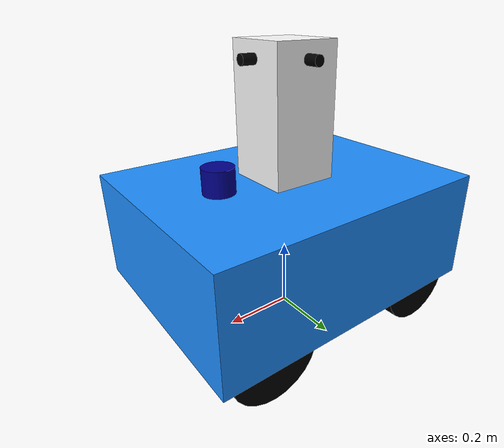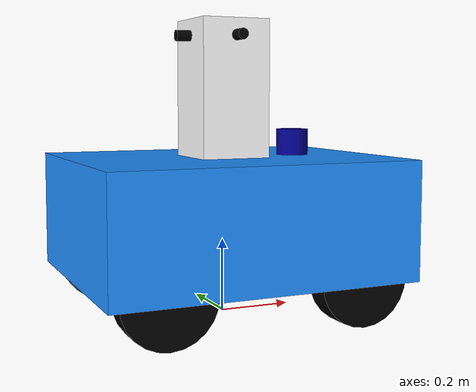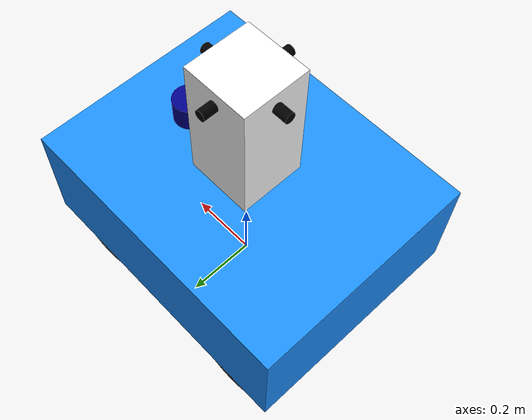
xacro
<?xml version="1.0"?>
<robot xmlns:xacro="http://www.ros.org/wiki/xacro"  name="robot">
    <xacro:arg name="use_ros2_control" default="true"/>
    <!-- Запуск управления hardware -->
    <xacro:if value="$(arg use_ros2_control)">
        <xacro:include filename="ros2_control.xacro" />
    </xacro:if>
    <xacro:include filename="inertial_macros.xacro"/>
    <xacro:include filename="robot_core.xacro"/>
    <xacro:include filename="lidar.xacro" />
    <xacro:include filename="cameras.xacro"/>
</robot>

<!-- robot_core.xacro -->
<robot xmlns:xacro="http://ros.org/wiki/xacro">
    <xacro:property name="body_length" value="0.84"/>
    <xacro:property name="body_width" value="0.66"/>
    <xacro:property name="body_height" value="0.32"/>
    <xacro:property name="body_mass" value="30"/>
    <xacro:property name="wheel_radius" value="0.125"/>
    <xacro:property name="wheel_width" value="0.07"/>
    <xacro:property name="wheel_offset_x" value="0.265"/>
    <xacro:property name="wheel_offset_y" value="0.275"/>
    <xacro:property name="wheel_offset_z" value="0.015"/>
    <xacro:property name="wheel_mass" value="2"/>
    <xacro:property name="tower_height" value="0.37"/>
    <xacro:property name="tower_width" value="0.19"/>
    <xacro:property name="tower_mass" value="1.1643"/>

    <material name="body">
        <color rgba="0.12 0.56 1 1"/>
    </material>
    <material name="wheel">
        <color rgba="0 0 0 1"/>
    </material>
    <material name="tower">
        <color rgba="1 1 1 1"/>
    </material>

    <link name="base_link"></link>

    <!-- Body -->
    <joint name="body_joint" type="fixed">
        <parent link="base_link"/>
        <child link="body"/>
        <origin xyz="0 0 ${body_height/2+wheel_radius-wheel_offset_z}"/>
    </joint>
    <link name="body">
        <visual>
            <geometry>
                <box size="${body_length} ${body_width} ${body_height}"/>
            </geometry>
            <material name="body"/>
        </visual>
        <collision>
            <geometry>
                <box size="${body_length} ${body_width} ${body_height}"/>
            </geometry>
        </collision>
        <xacro:inertial_box mass="${body_mass}" x="${body_length}" y="${body_width}" z="${body_height}">
            <origin/>
        </xacro:inertial_box>
    </link>

    <!-- Wheels -->
    <joint name="left_wheel_joint" type="continuous">
        <parent link="body"/>
        <child link="left_wheel"/>
        <origin xyz ="${wheel_offset_x} ${wheel_offset_y} -${body_height/2-wheel_offset_z}" rpy="-${pi/2} 0 0"/>
        <axis xyz="0 0 1"/>
    </joint>
    <link name="left_wheel">
        <visual>
            <geometry>
                <cylinder radius="${wheel_radius}" length="${wheel_width}"/>
            </geometry>
            <material name="wheel"/>
        </visual>
        <collision>
            <geometry>
                <cylinder radius="${wheel_radius}" length="${wheel_width}"/>
            </geometry>
        </collision>
        <xacro:inertial_cylinder mass="${wheel_mass}" radius="${wheel_radius}" length="${wheel_width}">
            <origin/>
        </xacro:inertial_cylinder>
    </link>

    <joint name="right_wheel_joint" type="continuous">
        <parent link="body"/>
        <child link="right_wheel"/>
        <origin xyz ="${wheel_offset_x} -${wheel_offset_y} -${body_height/2-wheel_offset_z}" rpy="${pi/2} 0 0"/>
        <axis xyz="0 0 -1"/>
    </joint>
    <link name="right_wheel">
        <visual>
            <geometry>
                <cylinder radius="${wheel_radius}" length="${wheel_width}"/>
            </geometry>
            <material name="wheel"/>
        </visual>
        <collision>
            <geometry>
                <cylinder radius="${wheel_radius}" length="${wheel_width}"/>
            </geometry>
        </collision>
        <xacro:inertial_cylinder mass="${wheel_mass}" radius="${wheel_radius}" length="${wheel_width}">
            <origin/>
        </xacro:inertial_cylinder>
    </link>

    <joint name="rear_left_wheel_joint" type="fixed">
        <parent link="body"/>
        <child link="rear_left_wheel"/>
        <origin xyz ="-${wheel_offset_x} ${wheel_offset_y} -${body_height/2-wheel_offset_z}" rpy="-${pi/2} 0 0"/>
        <axis xyz="0 0 1"/>
    </joint>
    <link name="rear_left_wheel">
        <visual>
            <geometry>
                <cylinder radius="${wheel_radius}" length="${wheel_width}"/>
            </geometry>
            <material name="wheel"/>
        </visual>
        <collision>
            <geometry>
                <cylinder radius="${wheel_radius}" length="${wheel_width}"/>
            </geometry>
        </collision>
        <xacro:inertial_cylinder mass="${wheel_mass}" radius="${wheel_radius}" length="${wheel_width}">
            <origin/>
        </xacro:inertial_cylinder>
    </link>

    <joint name="rear_right_wheel_joint" type="fixed">
        <parent link="body"/>
        <child link="rear_right_wheel"/>
        <origin xyz ="-${wheel_offset_x} -${wheel_offset_y} -${body_height/2-wheel_offset_z}" rpy="${pi/2} 0 0"/>
        <axis xyz="0 0 -1"/>
    </joint>
    <link name="rear_right_wheel">
        <visual>
            <geometry>
                <cylinder radius="${wheel_radius}" length="${wheel_width}"/>
            </geometry>
            <material name="wheel"/>
        </visual>
        <collision>
            <geometry>
                <cylinder radius="${wheel_radius}" length="${wheel_width}"/>
            </geometry>
        </collision>
        <xacro:inertial_cylinder mass="${wheel_mass}" radius="${wheel_radius}" length="${wheel_width}">
            <origin/>
        </xacro:inertial_cylinder>
    </link>

    <joint name="odom_joint" type="fixed">
  <parent link="odom"/>
  <child link="base_link"/>
  <origin xyz="0 0 0" rpy="0 0 0"/>
</joint>

<link name="odom"/>

    <!-- Tower -->
    <joint name="tower_joint" type="fixed">
        <parent link="body"/>
        <child link="tower"/>
        <origin xyz="0 0 ${body_height/2+tower_height/2}"/>
    </joint>
    <link name="tower">
        <visual>
            <geometry>
                <box size="${tower_width} ${tower_width} ${tower_height}"/>
            </geometry>
            <material name="tower"/>
        </visual>
        <collision>
            <geometry>
                <box size="${tower_width} ${tower_width} ${tower_height}"/>
            </geometry>
        </collision>
        <xacro:inertial_box mass="${tower_mass}" x="${tower_width}" y="${tower_width}" z="${tower_height}">
            <origin/>
        </xacro:inertial_box>
    </link>
</robot>

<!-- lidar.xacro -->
<robot xmlns:xacro="http://ros.org/wiki/xacro">
    <xacro:property name="lidar_radius" value="0.0445"/>
    <xacro:property name="lidar_height" value="0.072"/>
    <xacro:property name="lidar_offset_x" value="0.215"/>
    <xacro:property name="lidar_samples" value="1875"/>
    <xacro:property name="lidar_lasers" value="16"/>
    <xacro:property name="lidar_horizontal_min_angle" value="-${pi}"/>
    <xacro:property name="lidar_horizontal_max_angle" value="${pi}"/>
    <xacro:property name="lidar_vertical_min_angle" value="-${20*pi/180}"/>
    <xacro:property name="lidar_vertical_max_angle" value="${20*pi/180}"/>
    <xacro:property name="lidar_mass" value="0.6"/>

    <material name="lidar">
        <color rgba="0 0 0.55 1"/>
    </material>

    <joint name="lidar_joint" type="fixed">
        <parent link="body"/>
        <child link="lidar"/>
        <origin xyz="${lidar_offset_x} 0 ${body_height/2+lidar_height/2}"/>
    </joint>
    <link name="lidar">
        <visual>
            <geometry>
                <cylinder radius="${lidar_radius}" length="${lidar_height}"/>
            </geometry>
            <material name="lidar"/>
        </visual>
        <collision>
            <geometry>
                <cylinder radius="${lidar_radius}" length="${lidar_height}"/>
            </geometry>
        </collision>
        <xacro:inertial_cylinder mass="${lidar_mass}" radius="${lidar_radius}" length="${lidar_height}">
            <origin/>
        </xacro:inertial_cylinder>
    </link>
</robot>

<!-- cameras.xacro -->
<robot xmlns:xacro="http://ros.org/wiki/xacro">
    <xacro:property name="camera_radius" value="0.0145"/>
    <xacro:property name="camera_length" value="0.04"/>
    <xacro:property name="camera_offset_z" value="0.045"/>
    <xacro:property name="camera_update_rate" value="10"/>
    <xacro:property name="camera_fov" value="${49.29*pi/180}"/>
    <xacro:property name="camera_image_width" value="2448"/>
    <xacro:property name="camera_image_height" value="2048"/>
    <xacro:property name="camera_mass" value="0.2"/>

    <material name="camera">
        <color rgba="0 0 0 1"/>
    </material>

    <joint name="front_camera_joint" type="fixed">
        <parent link="tower"/>
        <child link="front_camera"/>
        <origin xyz="${tower_width/2+camera_length/2} 0 ${tower_height/2-camera_offset_z}"/>
    </joint>
    <link name="front_camera">
        <visual>
            <origin rpy="0 ${pi/2} 0"/>
            <geometry>
                <cylinder radius="${camera_radius}" length="${camera_length}"/>
            </geometry>
            <material name="camera"/>
        </visual>
        <collision>
            <geometry>
                <cylinder radius="${camera_radius}" length="${camera_length}"/>
            </geometry>
        </collision>
        <xacro:inertial_cylinder mass="${camera_mass}" radius="${camera_radius}" length="${camera_length}">
            <origin rpy="0 ${pi/2} 0"/>
        </xacro:inertial_cylinder>
    </link>

    <joint name="back_camera_joint" type="fixed">
        <parent link="tower"/>
        <child link="back_camera"/>
        <origin xyz="-${tower_width/2+camera_length/2} 0 ${tower_height/2-camera_offset_z}"/>
    </joint>
    <link name="back_camera">
        <visual>
            <origin rpy="0 -${pi/2} 0"/>
            <geometry>
                <cylinder radius="${camera_radius}" length="${camera_length}"/>
            </geometry>
            <material name="camera"/>
        </visual>
        <collision>
            <geometry>
                <cylinder radius="${camera_radius}" length="${camera_length}"/>
            </geometry>
        </collision>
        <xacro:inertial_cylinder mass="${camera_mass}" radius="${camera_radius}" length="${camera_length}">
            <origin rpy="0 -${pi/2} 0"/>
        </xacro:inertial_cylinder>
    </link>

    <joint name="left_camera_joint" type="fixed">
        <parent link="tower"/>
        <child link="left_camera"/>
        <origin xyz="0 ${tower_width/2+camera_length/2} ${tower_height/2-camera_offset_z}"/>
    </joint>
    <link name="left_camera">
        <visual>
            <origin rpy="-${pi/2} 0 0"/>
            <geometry>
                <cylinder radius="${camera_radius}" length="${camera_length}"/>
            </geometry>
            <material name="camera"/>
        </visual>
        <collision>
            <geometry>
                <cylinder radius="${camera_radius}" length="${camera_length}"/>
            </geometry>
        </collision>
        <xacro:inertial_cylinder mass="${camera_mass}" radius="${camera_radius}" length="${camera_length}">
            <origin rpy="-${pi/2} 0 0"/>
        </xacro:inertial_cylinder>
    </link>

    <joint name="right_camera_joint" type="fixed">
        <parent link="tower"/>
        <child link="right_camera"/>
        <origin xyz="0 -${tower_width/2+camera_length/2} ${tower_height/2-camera_offset_z}"/>
    </joint>
    <link name="right_camera">
        <visual>
            <origin rpy="${pi/2} 0 0"/>
            <geometry>
                <cylinder radius="${camera_radius}" length="${camera_length}"/>
            </geometry>
            <material name="camera"/>
        </visual>
        <collision>
            <geometry>
                <cylinder radius="${camera_radius}" length="${camera_length}"/>
            </geometry>
        </collision>
        <xacro:inertial_cylinder mass="${camera_mass}" radius="${camera_radius}" length="${camera_length}">
            <origin rpy="${pi/2} 0 0"/>
        </xacro:inertial_cylinder>
    </link>
</robot>
